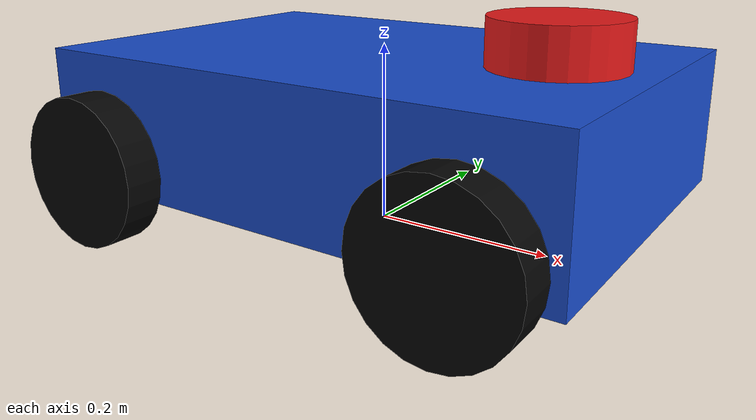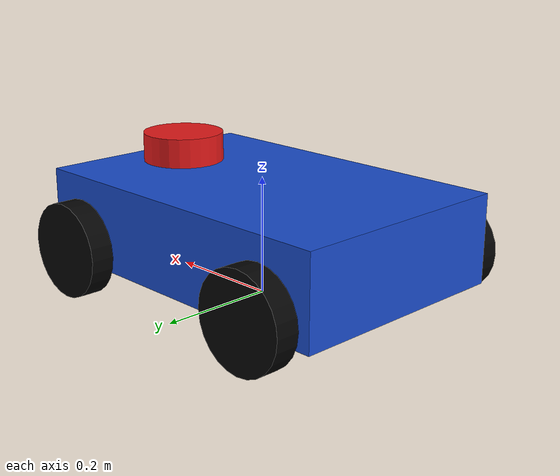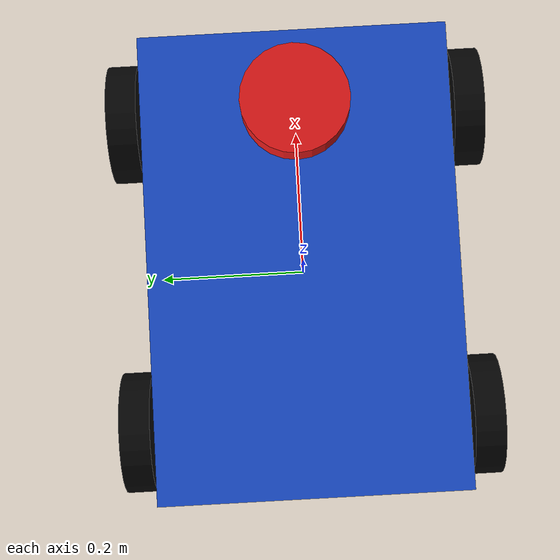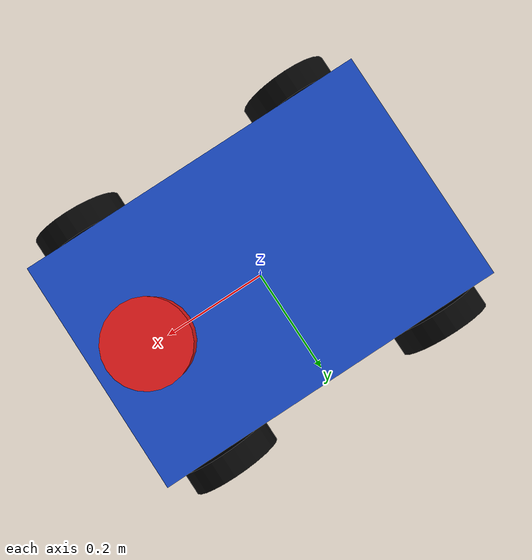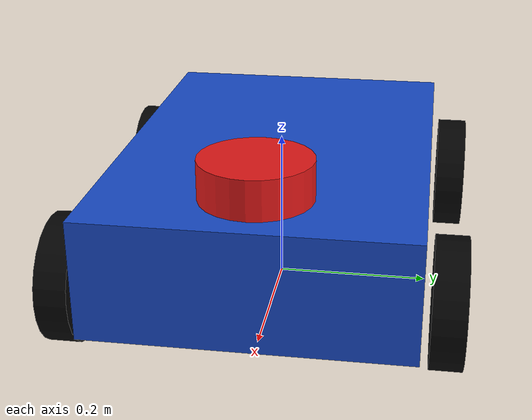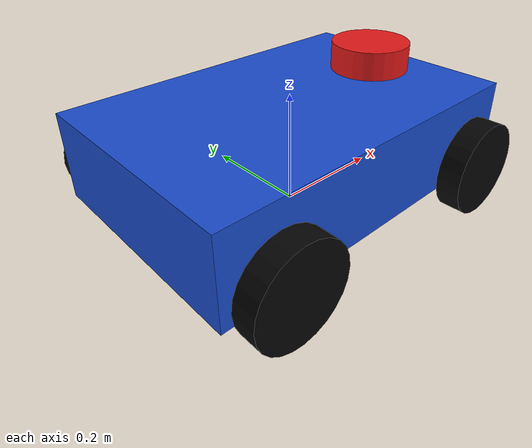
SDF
<?xml version="1.0"?>
<sdf version="1.9">
  <model name="my_robot" canonical_link="base_link">
    <pose>0 0 0 0 0 0</pose>

    <link name="base_footprint">
      <pose>0 0 0 0 0 0</pose>
    </link>

    <link name="base_link">
      <pose>0 0 0.12 0 0 0</pose>

      <inertial>
        <mass>8.0</mass>
        <inertia>
          <ixx>0.12</ixx>
          <ixy>0.0</ixy>
          <ixz>0.0</ixz>
          <iyy>0.25</iyy>
          <iyz>0.0</iyz>
          <izz>0.30</izz>
        </inertia>
      </inertial>

      <collision name="collision">
        <geometry>
          <box>
            <size>0.60 0.40 0.15</size>
          </box>
        </geometry>
      </collision>

      <visual name="visual">
        <geometry>
          <box>
            <size>0.60 0.40 0.15</size>
          </box>
        </geometry>
        <material>
          <ambient>0.1 0.3 0.8 1.0</ambient>
          <diffuse>0.1 0.3 0.8 1.0</diffuse>
        </material>
      </visual>
    </link>

    <link name="laser_link">
      <pose>0.20 0 0.22 0 0 0</pose>

      <inertial>
        <mass>0.2</mass>
        <inertia>
          <ixx>0.0005</ixx>
          <ixy>0.0</ixy>
          <ixz>0.0</ixz>
          <iyy>0.0005</iyy>
          <iyz>0.0</iyz>
          <izz>0.0005</izz>
        </inertia>
      </inertial>

      <collision name="collision">
        <geometry>
          <cylinder>
            <radius>0.07</radius>
            <length>0.05</length>
          </cylinder>
        </geometry>
      </collision>

      <visual name="visual">
        <geometry>
          <cylinder>
            <radius>0.07</radius>
            <length>0.05</length>
          </cylinder>
        </geometry>
        <material>
          <ambient>0.9 0.1 0.1 1.0</ambient>
          <diffuse>0.9 0.1 0.1 1.0</diffuse>
        </material>
      </visual>

      <sensor name="laser_sensor" type="gpu_lidar">
        <pose>0 0 0 0 0 0</pose>
        <topic>/scan</topic>
        <update_rate>10</update_rate>
        <gz_frame_id>laser_link</gz_frame_id>

        <lidar>
          <scan>
            <horizontal>
              <samples>360</samples>
              <resolution>1</resolution>
              <min_angle>-3.14159</min_angle>
              <max_angle>3.14159</max_angle>
            </horizontal>
          </scan>
          <range>
            <min>0.12</min>
            <max>10.0</max>
            <resolution>0.01</resolution>
          </range>
          <noise>
            <type>gaussian</type>
            <mean>0.0</mean>
            <stddev>0.01</stddev>
          </noise>
        </lidar>
        <always_on>true</always_on>
        <visualize>true</visualize>
      </sensor>
    </link>

    <link name="left_front_wheel_link">
      <pose>0.21 0.23 0.08 -1.57079632679 0 0</pose>
      <inertial>
        <mass>0.8</mass>
        <inertia>
          <ixx>0.002</ixx>
          <ixy>0.0</ixy>
          <ixz>0.0</ixz>
          <iyy>0.002</iyy>
          <iyz>0.0</iyz>
          <izz>0.002</izz>
        </inertia>
      </inertial>
      <collision name="collision">
        <surface>
          <friction>
            <ode>
              <mu>1.0</mu>
              <mu2>0.2</mu2>
            </ode>
          </friction>
        </surface>
        <geometry>
          <cylinder>
            <radius>0.08</radius>
            <length>0.04</length>
          </cylinder>
        </geometry>
      </collision>
      <visual name="visual">
        <geometry>
          <cylinder>
            <radius>0.08</radius>
            <length>0.04</length>
          </cylinder>
        </geometry>
        <material>
          <ambient>0.02 0.02 0.02 1.0</ambient>
          <diffuse>0.02 0.02 0.02 1.0</diffuse>
        </material>
      </visual>
    </link>

    <link name="left_rear_wheel_link">
      <pose>-0.21 0.23 0.08 -1.57079632679 0 0</pose>
      <inertial>
        <mass>0.8</mass>
        <inertia>
          <ixx>0.002</ixx>
          <ixy>0.0</ixy>
          <ixz>0.0</ixz>
          <iyy>0.002</iyy>
          <iyz>0.0</iyz>
          <izz>0.002</izz>
        </inertia>
      </inertial>
      <collision name="collision">
        <surface>
          <friction>
            <ode>
              <mu>1.0</mu>
              <mu2>0.2</mu2>
            </ode>
          </friction>
        </surface>
        <geometry>
          <cylinder>
            <radius>0.08</radius>
            <length>0.04</length>
          </cylinder>
        </geometry>
      </collision>
      <visual name="visual">
        <geometry>
          <cylinder>
            <radius>0.08</radius>
            <length>0.04</length>
          </cylinder>
        </geometry>
        <material>
          <ambient>0.02 0.02 0.02 1.0</ambient>
          <diffuse>0.02 0.02 0.02 1.0</diffuse>
        </material>
      </visual>
    </link>

    <link name="right_front_wheel_link">
      <pose>0.21 -0.23 0.08 -1.57079632679 0 0</pose>
      <inertial>
        <mass>0.8</mass>
        <inertia>
          <ixx>0.002</ixx>
          <ixy>0.0</ixy>
          <ixz>0.0</ixz>
          <iyy>0.002</iyy>
          <iyz>0.0</iyz>
          <izz>0.002</izz>
        </inertia>
      </inertial>
      <collision name="collision">
        <surface>
          <friction>
            <ode>
              <mu>1.0</mu>
              <mu2>0.2</mu2>
            </ode>
          </friction>
        </surface>
        <geometry>
          <cylinder>
            <radius>0.08</radius>
            <length>0.04</length>
          </cylinder>
        </geometry>
      </collision>
      <visual name="visual">
        <geometry>
          <cylinder>
            <radius>0.08</radius>
            <length>0.04</length>
          </cylinder>
        </geometry>
        <material>
          <ambient>0.02 0.02 0.02 1.0</ambient>
          <diffuse>0.02 0.02 0.02 1.0</diffuse>
        </material>
      </visual>
    </link>

    <link name="right_rear_wheel_link">
      <pose>-0.21 -0.23 0.08 -1.57079632679 0 0</pose>
      <inertial>
        <mass>0.8</mass>
        <inertia>
          <ixx>0.002</ixx>
          <ixy>0.0</ixy>
          <ixz>0.0</ixz>
          <iyy>0.002</iyy>
          <iyz>0.0</iyz>
          <izz>0.002</izz>
        </inertia>
      </inertial>
      <collision name="collision">
        <surface>
          <friction>
            <ode>
              <mu>1.0</mu>
              <mu2>0.2</mu2>
            </ode>
          </friction>
        </surface>
        <geometry>
          <cylinder>
            <radius>0.08</radius>
            <length>0.04</length>
          </cylinder>
        </geometry>
      </collision>
      <visual name="visual">
        <geometry>
          <cylinder>
            <radius>0.08</radius>
            <length>0.04</length>
          </cylinder>
        </geometry>
        <material>
          <ambient>0.02 0.02 0.02 1.0</ambient>
          <diffuse>0.02 0.02 0.02 1.0</diffuse>
        </material>
      </visual>
    </link>

    <joint name="base_joint" type="fixed">
      <parent>base_footprint</parent>
      <child>base_link</child>
      <pose relative_to="base_footprint">0 0 0.12 0 0 0</pose>
    </joint>

    <joint name="laser_joint" type="fixed">
      <parent>base_link</parent>
      <child>laser_link</child>
      <pose relative_to="base_link">0.20 0 0.10 0 0 0</pose>
    </joint>

    <joint name="left_front_wheel_joint" type="revolute">
      <parent>base_link</parent>
      <child>left_front_wheel_link</child>
      <pose relative_to="base_link">0.21 0.23 -0.04 -1.57079632679 0 0</pose>
      <axis>
        <xyz>0 0 1</xyz>
        <limit>
          <lower>-1e16</lower>
          <upper>1e16</upper>
          <effort>20</effort>
          <velocity>20</velocity>
        </limit>
      </axis>
    </joint>

    <joint name="left_rear_wheel_joint" type="revolute">
      <parent>base_link</parent>
      <child>left_rear_wheel_link</child>
      <pose relative_to="base_link">-0.21 0.23 -0.04 -1.57079632679 0 0</pose>
      <axis>
        <xyz>0 0 1</xyz>
        <limit>
          <lower>-1e16</lower>
          <upper>1e16</upper>
          <effort>20</effort>
          <velocity>20</velocity>
        </limit>
      </axis>
    </joint>

    <joint name="right_front_wheel_joint" type="revolute">
      <parent>base_link</parent>
      <child>right_front_wheel_link</child>
      <pose relative_to="base_link">0.21 -0.23 -0.04 -1.57079632679 0 0</pose>
      <axis>
        <xyz>0 0 1</xyz>
        <limit>
          <lower>-1e16</lower>
          <upper>1e16</upper>
          <effort>20</effort>
          <velocity>20</velocity>
        </limit>
      </axis>
    </joint>

    <joint name="right_rear_wheel_joint" type="revolute">
      <parent>base_link</parent>
      <child>right_rear_wheel_link</child>
      <pose relative_to="base_link">-0.21 -0.23 -0.04 -1.57079632679 0 0</pose>
      <axis>
        <xyz>0 0 1</xyz>
        <limit>
          <lower>-1e16</lower>
          <upper>1e16</upper>
          <effort>20</effort>
          <velocity>20</velocity>
        </limit>
      </axis>
    </joint>

    <plugin
      filename="gz-sim-diff-drive-system"
      name="gz::sim::systems::DiffDrive">

      <left_joint>left_front_wheel_joint</left_joint>
      <left_joint>left_rear_wheel_joint</left_joint>
      <right_joint>right_front_wheel_joint</right_joint>
      <right_joint>right_rear_wheel_joint</right_joint>

      <wheel_separation>0.46</wheel_separation>
      <wheel_radius>0.08</wheel_radius>

      <odom_publish_frequency>50</odom_publish_frequency>
      <max_velocity>1.0</max_velocity>
      <max_linear_acceleration>0.2</max_linear_acceleration>

      <topic>/cmd_vel</topic>
      <odom_topic>/odom</odom_topic>
      <frame_id>odom</frame_id>
      <child_frame_id>base_footprint</child_frame_id>
    </plugin>
  </model>
</sdf>
